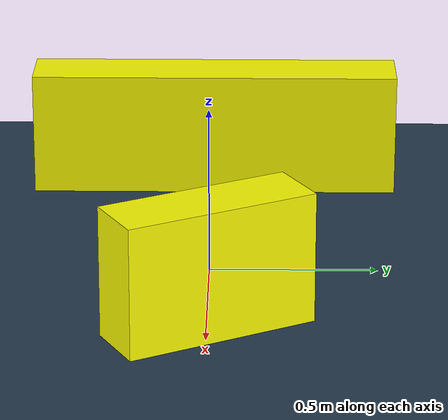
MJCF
<mujoco>
  <compiler inertiafromgeom='true' angle='radian'/>

  <asset>
      <texture type="skybox" builtin="gradient" width="100" height="100" rgb1=".4 .6 .8"
          rgb2="0 0 0"/>
      <texture name="texgeom" type="cube" builtin="flat" mark="cross" width="127" height="1278"
          rgb1="0.8 0.6 0.4" rgb2="0.8 0.6 0.4" markrgb="1 1 1" random="0.01"/>
      <texture name="texplane" type="2d" builtin="checker" rgb1=".2 .3 .4" rgb2=".1 0.15 0.2"
          width="100" height="100"/>

      <material name='MatPlane' reflectance='0.5' texture="texplane"/>
      <material name='geom' texture="texgeom" texuniform="true"/>
  </asset>

  <worldbody>
    <light directional='false' diffuse='.8 .8 .8' specular='0.3 0.3 0.3' pos='0 0 4.5' dir='0 0 -1'/>

    <body name='pusher' pos='-1 0 0' >
      <joint name='pusher_root' type='free' limited='false'
             damping='0' armature='0' stiffness='0'/>

      <geom type='box' pos="0 0 0.1" size='0.1 0.6 0.2'
            condim='3' mass="6" friction="0.25" rgba='1.0 1.0 0.0 1.0' material='geom'/>
    </body>

    <body name='pushee' pos='0.2 0 0' axisangle="0 0 1 0.5">
      <joint name='pushee_root' type='free' limited='false'
             damping='0' armature='0' stiffness='0'/>

      <geom type='box' pos="0 0 0.1" size='0.1 0.3 0.2'
            condim='3' mass="6" friction="0.25" rgba='1.0 1.0 0.0 1.0' material='geom'/>
    </body>

    <geom name='map' pos='0 0 -0.1' size='10 10 0.1' type='plane' material="MatPlane"
          condim='3' mass="10000" friction="1.0"/>
  </worldbody>
</mujoco>
